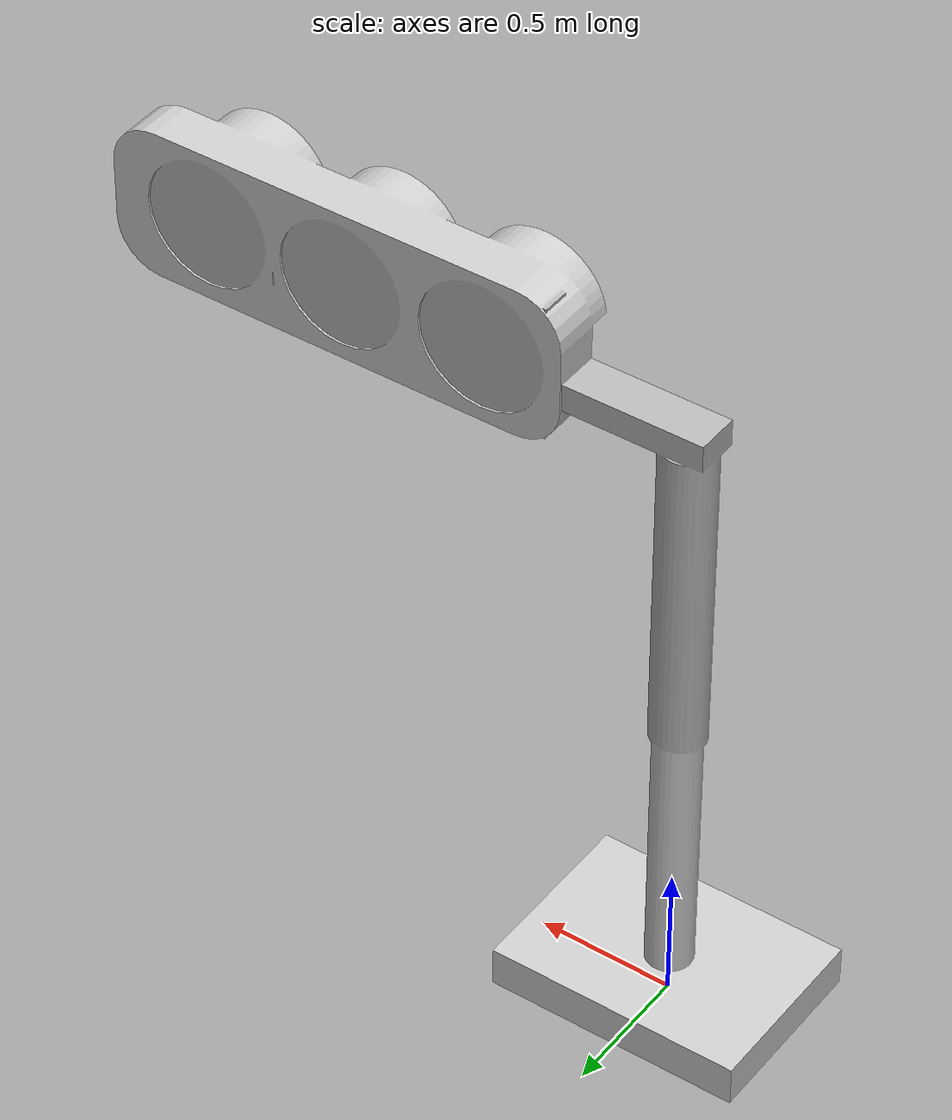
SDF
<?xml version="1.0" ?>
<sdf version="1.5">

  <model name="taffic_stand_left">
    <static>true</static>

    <link name="traffic_stand_link">

      <visual name="visual">
        <geometry>
          <mesh>
            <uri>model://traffic_stand_left/meshes/traffic_light.dae</uri>
          </mesh>
        </geometry>
      </visual>

      <collision name="collision">
        <geometry>
          <mesh>
            <uri>model://traffic_stand_left/meshes/traffic_light.dae</uri>
          </mesh>
        </geometry>
      </collision>

    </link>

    <static>1</static>
    <allow_auto_disable>1</allow_auto_disable>
  </model>

</sdf>
